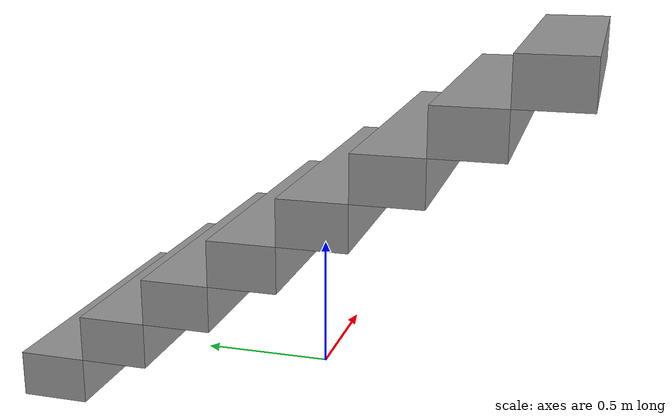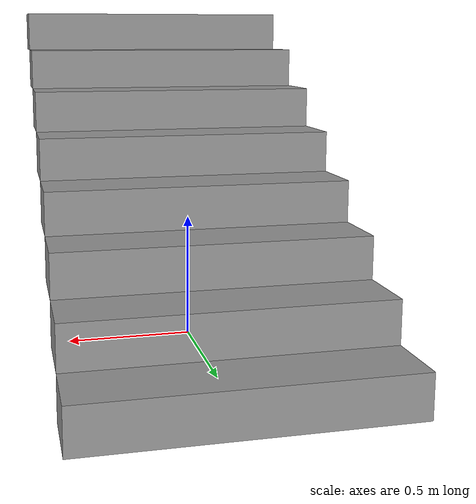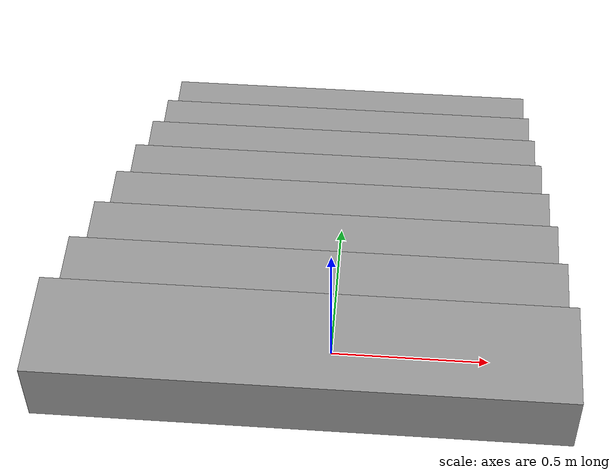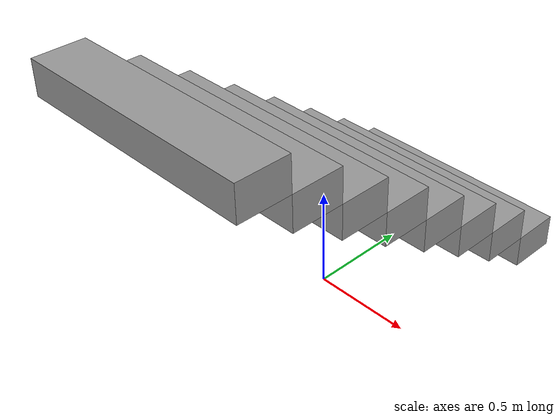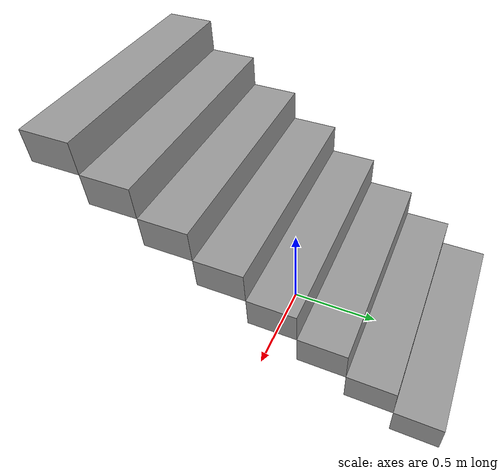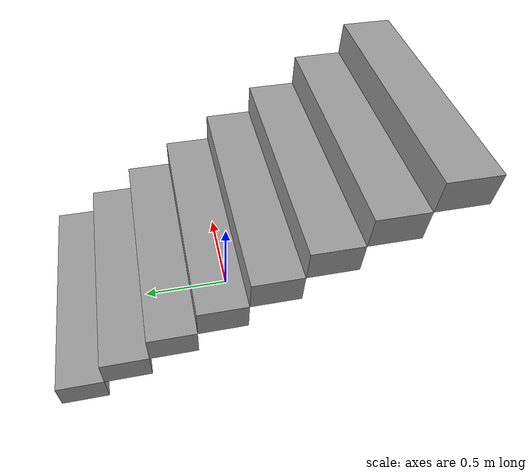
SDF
<?xml version='1.0'?>
<sdf version='1.6'>
  <model name='stairs45'>
    <pose frame=''>0 0 0 0 -0 0</pose>
    <link name='Stairs_4'>
      <visual name='Stairs_4_Visual_0'>
        <pose frame=''>-0 0.875 0.084063 0 -0 0</pose>
        <geometry>
          <box>
            <size>1.2 0.25 0.168125</size>
          </box>
        </geometry>
        <material>
          <script>
            <uri>file://media/materials/scripts/gazebo.material</uri>
            <name>Gazebo/Grey</name>
          </script>
          <ambient>1 1 1 1</ambient>
        </material>
        <meta>
          <layer>0</layer>
        </meta>
      </visual>
      <collision name='Stairs_4_Collision_0'>
        <geometry>
          <box>
            <size>1.2 0.25 0.168125</size>
          </box>
        </geometry>
        <pose frame=''>-0 0.875 0.084063 0 -0 0</pose>
      </collision>
      <visual name='Stairs_4_Visual_1'>
        <pose frame=''>-0 0.625 0.252187 0 -0 0</pose>
        <geometry>
          <box>
            <size>1.2 0.25 0.168125</size>
          </box>
        </geometry>
        <material>
          <script>
            <uri>file://media/materials/scripts/gazebo.material</uri>
            <name>Gazebo/Grey</name>
          </script>
          <ambient>1 1 1 1</ambient>
        </material>
        <meta>
          <layer>0</layer>
        </meta>
      </visual>
      <collision name='Stairs_4_Collision_1'>
        <geometry>
          <box>
            <size>1.2 0.25 0.168125</size>
          </box>
        </geometry>
        <pose frame=''>-0 0.625 0.252187 0 -0 0</pose>
      </collision>
      <visual name='Stairs_4_Visual_2'>
        <pose frame=''>-0 0.375 0.420313 0 -0 0</pose>
        <geometry>
          <box>
            <size>1.2 0.25 0.168125</size>
          </box>
        </geometry>
        <material>
          <script>
            <uri>file://media/materials/scripts/gazebo.material</uri>
            <name>Gazebo/Grey</name>
          </script>
          <ambient>1 1 1 1</ambient>
        </material>
        <meta>
          <layer>0</layer>
        </meta>
      </visual>
      <collision name='Stairs_4_Collision_2'>
        <geometry>
          <box>
            <size>1.2 0.25 0.168125</size>
          </box>
        </geometry>
        <pose frame=''>-0 0.375 0.420313 0 -0 0</pose>
      </collision>
      <visual name='Stairs_4_Visual_3'>
        <pose frame=''>-0 0.125 0.588437 0 -0 0</pose>
        <geometry>
          <box>
            <size>1.2 0.25 0.168125</size>
          </box>
        </geometry>
        <material>
          <script>
            <uri>file://media/materials/scripts/gazebo.material</uri>
            <name>Gazebo/Grey</name>
          </script>
          <ambient>1 1 1 1</ambient>
        </material>
        <meta>
          <layer>0</layer>
        </meta>
      </visual>
      <collision name='Stairs_4_Collision_3'>
        <geometry>
          <box>
            <size>1.2 0.25 0.168125</size>
          </box>
        </geometry>
        <pose frame=''>-0 0.125 0.588437 0 -0 0</pose>
      </collision>
      <visual name='Stairs_4_Visual_4'>
        <pose frame=''>-0 -0.125 0.756563 0 -0 0</pose>
        <geometry>
          <box>
            <size>1.2 0.25 0.168125</size>
          </box>
        </geometry>
        <material>
          <script>
            <uri>file://media/materials/scripts/gazebo.material</uri>
            <name>Gazebo/Grey</name>
          </script>
          <ambient>1 1 1 1</ambient>
        </material>
        <meta>
          <layer>0</layer>
        </meta>
      </visual>
      <collision name='Stairs_4_Collision_4'>
        <geometry>
          <box>
            <size>1.2 0.25 0.168125</size>
          </box>
        </geometry>
        <pose frame=''>-0 -0.125 0.756563 0 -0 0</pose>
      </collision>
      <visual name='Stairs_4_Visual_5'>
        <pose frame=''>-0 -0.375 0.924688 0 -0 0</pose>
        <geometry>
          <box>
            <size>1.2 0.25 0.168125</size>
          </box>
        </geometry>
        <material>
          <script>
            <uri>file://media/materials/scripts/gazebo.material</uri>
            <name>Gazebo/Grey</name>
          </script>
          <ambient>1 1 1 1</ambient>
        </material>
        <meta>
          <layer>0</layer>
        </meta>
      </visual>
      <collision name='Stairs_4_Collision_5'>
        <geometry>
          <box>
            <size>1.2 0.25 0.168125</size>
          </box>
        </geometry>
        <pose frame=''>-0 -0.375 0.924688 0 -0 0</pose>
      </collision>
      <visual name='Stairs_4_Visual_6'>
        <pose frame=''>-0 -0.625 1.09281 0 -0 0</pose>
        <geometry>
          <box>
            <size>1.2 0.25 0.168125</size>
          </box>
        </geometry>
        <material>
          <script>
            <uri>file://media/materials/scripts/gazebo.material</uri>
            <name>Gazebo/Grey</name>
          </script>
          <ambient>1 1 1 1</ambient>
        </material>
        <meta>
          <layer>0</layer>
        </meta>
      </visual>
      <collision name='Stairs_4_Collision_6'>
        <geometry>
          <box>
            <size>1.2 0.25 0.168125</size>
          </box>
        </geometry>
        <pose frame=''>-0 -0.625 1.09281 0 -0 0</pose>
      </collision>
      <visual name='Stairs_4_Visual_7'>
        <pose frame=''>-0 -0.875 1.26094 0 -0 0</pose>
        <geometry>
          <box>
            <size>1.2 0.25 0.168125</size>
          </box>
        </geometry>
        <material>
          <script>
            <uri>file://media/materials/scripts/gazebo.material</uri>
            <name>Gazebo/Grey</name>
          </script>
          <ambient>1 1 1 1</ambient>
        </material>
        <meta>
          <layer>0</layer>
        </meta>
      </visual>
      <collision name='Stairs_4_Collision_7'>
        <geometry>
          <box>
            <size>1.2 0.25 0.168125</size>
          </box>
        </geometry>
        <pose frame=''>-0 -0.875 1.26094 0 -0 0</pose>
      </collision>
    </link>
    <static>1</static>
  </model>
</sdf>
